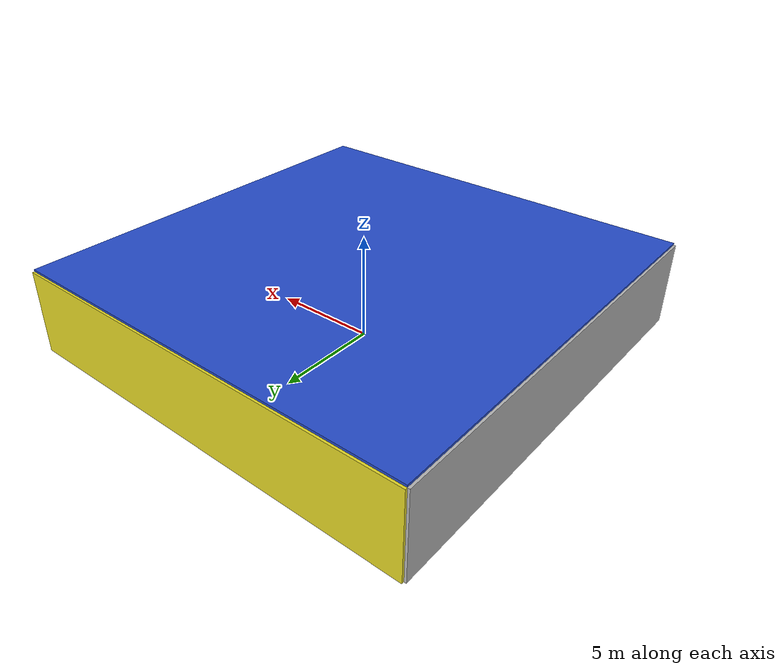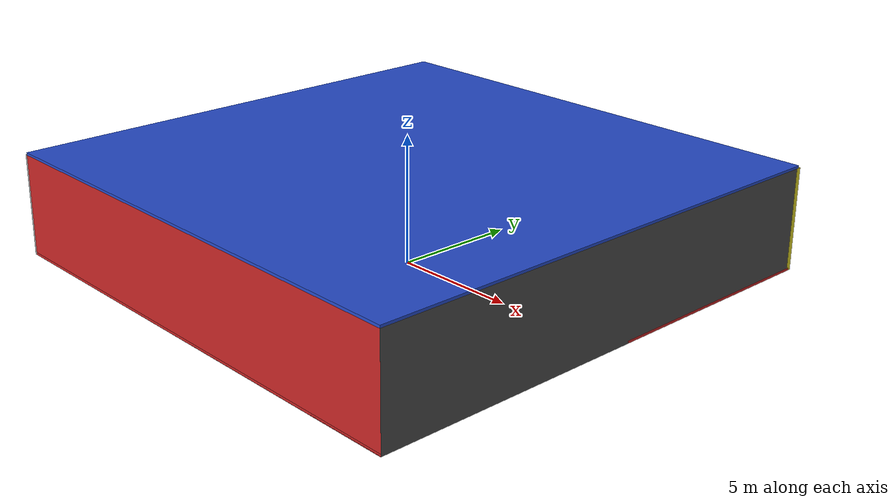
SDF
<sdf version="1.4">
 <world name="default">
  <physics type="ode">
   <max_step_size>0.001</max_step_size>
   <real_time_factor>1</real_time_factor>
   <real_time_update_rate>1000</real_time_update_rate>
   <gravity>0 0 -9.8</gravity>
  </physics>
  <scene><ambient>0.4 0.4 0.4 1</ambient><background>0.7 0.7 0.7 1</background><shadows>1</shadows></scene>
  <model name="Surrounding">
   <static>1</static>
   <link name="Ceiling">
    <collision name="Ceiling_Collision"><geometry><box><size>20 20 0.1</size></box></geometry></collision>
    <visual name="Ceiling_Visual">
     <geometry><box><size>20 20 0.1</size></box></geometry>
     <material>
      <script><uri>file://media/materials/scripts/gazebo.material</uri><name>Gazebo/Blue</name></script>
     </material>
    </visual>
    <pose>0 0 4.05 0 0 0</pose>
   </link>
   <link name="Wall_South">
    <collision name="Wall_South_Collision">
     <geometry><box><size>20 0 4</size></box></geometry>
     <pose>0 0 2 0 -0 0</pose>
    </collision>
    <visual name="Wall_South_Visual">
     <pose>0 0 2 0 -0 0</pose>
     <geometry><box><size>20 0 4</size></box></geometry>
     <material>
      <script><uri>file://media/materials/scripts/gazebo.material</uri><name>Gazebo/RedBright</name></script>
     </material>
    </visual>
    <velocity_decay><linear>0</linear><angular>0</angular></velocity_decay>
    <pose>0 -10 0 0 -0 0</pose>
   </link>
   <link name="Wall_East">
    <collision name="Wall_21_Collision">
     <geometry><box><size>20 0 4</size></box></geometry>
     <pose>0 0 2 0 -0 0</pose>
    </collision>
    <visual name="Wall_21_Visual">
     <pose>0 0 2 0 -0 0</pose>
     <geometry><box><size>20 0 4</size></box></geometry>
     <material>
      <script><uri>file://media/materials/scripts/gazebo.material</uri><name>Gazebo/Road</name></script>
     </material>
    </visual>
    <velocity_decay><linear>0</linear><angular>0</angular></velocity_decay>
    <pose>10 0 0 0 -0 1.5708</pose>
   </link>
   <link name="Wall_North">
    <collision name="Wall_22_Collision">
     <geometry><box><size>20 0.2 4</size></box></geometry>
     <pose>0 0 2 0 -0 0</pose>
    </collision>
    <visual name="Wall_22_Visual">
     <pose>0 0 2 0 -0 0</pose>
     <geometry><box><size>20 0.2 4</size></box></geometry>
     <material>
      <script><uri>file://media/materials/scripts/gazebo.material</uri><name>Gazebo/Yellow</name></script>
     </material>
    </visual>
    <velocity_decay><linear>0</linear><angular>0</angular></velocity_decay>
    <pose>0 10 0 0 -0 0</pose>
   </link>
   <link name="Wall_West">
    <collision name="Wall_23_Collision">
     <geometry><box><size>20 0.2 4</size></box></geometry>
     <pose>0 0 2 0 -0 0</pose>
    </collision>
    <visual name="Wall_23_Visual">
     <pose>0 0 2 0 -0 0</pose>
     <geometry><box><size>20 0.2 4</size></box></geometry>
     <material>
      <script><uri>file://media/materials/scripts/gazebo.material</uri><name>Gazebo/LightOn</name></script>
     </material>
    </visual>
    <velocity_decay><linear>0</linear><angular>0</angular></velocity_decay>
    <pose>-10 0 0 0 0 -1.5708</pose>
   </link>
   <link name="Ground_link">
    <collision name="collision">
     <pose>0 0 .05 0 -0 0</pose>
     <geometry><box><size>20 20 0.1</size></box></geometry>
    </collision>
    <visual name="visual">
     <pose>0 0 .05 0 -0 0</pose>
     <geometry><box><size>20 20 0.1</size></box></geometry>
     <material>
      <script><uri>file://media/materials/scripts/gazebo.material</uri><name>Gazebo/RedGlow</name></script>
     </material>
    </visual>
   </link>
   <static>1</static>
  </model>
  <spherical_coordinates>
   <surface_model>EARTH_WGS84</surface_model>
   <latitude_deg>0</latitude_deg>
   <longitude_deg>0</longitude_deg>
   <elevation>0</elevation>
   <heading_deg>0</heading_deg>
  </spherical_coordinates>
  <light name="lightball_0" type="diffuse">
   <diffuse>0.8 0.8 0.8 1</diffuse>
   <specular>0.2 0.2 0.2 1</specular>
   <attenuation>
    <range>100</range>
    <constant>0.7</constant>
    <linear>0.01</linear>
    <quadratic>0.001</quadratic>
   </attenuation>
   <direction>-0.5 0.1 -0.9</direction>
   <pose>4.50071383962 1.34742266961 1.81876980936 0 0 0</pose>
  </light>
  <light name="lightball_1" type="diffuse">
   <diffuse>0.8 0.8 0.8 1</diffuse>
   <specular>0.2 0.2 0.2 1</specular>
   <attenuation>
    <range>100</range>
    <constant>0.7</constant>
    <linear>0.01</linear>
    <quadratic>0.001</quadratic>
   </attenuation>
   <direction>-0.5 0.1 -0.9</direction>
   <pose>-5.28499184182 -2.05238496809 3.48724421059 0 0 0</pose>
  </light>
  <light name="lightball_2" type="diffuse">
   <diffuse>0.8 0.8 0.8 1</diffuse>
   <specular>0.2 0.2 0.2 1</specular>
   <attenuation>
    <range>100</range>
    <constant>0.7</constant>
    <linear>0.01</linear>
    <quadratic>0.001</quadratic>
   </attenuation>
   <direction>-0.5 0.1 -0.9</direction>
   <pose>-9.36485704496 7.05520294898 3.75965401888 0 0 0</pose>
  </light>
  <light name="lightball_3" type="diffuse">
   <diffuse>0.8 0.8 0.8 1</diffuse>
   <specular>0.2 0.2 0.2 1</specular>
   <attenuation>
    <range>100</range>
    <constant>0.7</constant>
    <linear>0.01</linear>
    <quadratic>0.001</quadratic>
   </attenuation>
   <direction>-0.5 0.1 -0.9</direction>
   <pose>8.67057157174 2.22864712515 2.98288399079 0 0 0</pose>
  </light>
  <light name="lightball_4" type="diffuse">
   <diffuse>0.8 0.8 0.8 1</diffuse>
   <specular>0.2 0.2 0.2 1</specular>
   <attenuation>
    <range>100</range>
    <constant>0.7</constant>
    <linear>0.01</linear>
    <quadratic>0.001</quadratic>
   </attenuation>
   <direction>-0.5 0.1 -0.9</direction>
   <pose>5.14723797677 4.62989775679 2.95560765693 0 0 0</pose>
  </light>
  <light name="lightball_5" type="diffuse">
   <diffuse>0.8 0.8 0.8 1</diffuse>
   <specular>0.2 0.2 0.2 1</specular>
   <attenuation>
    <range>100</range>
    <constant>0.7</constant>
    <linear>0.01</linear>
    <quadratic>0.001</quadratic>
   </attenuation>
   <direction>-0.5 0.1 -0.9</direction>
   <pose>-0.810720461931 -4.52818093588 3.45220643904 0 0 0</pose>
  </light>
  <light name="lightball_6" type="diffuse">
   <diffuse>0.8 0.8 0.8 1</diffuse>
   <specular>0.2 0.2 0.2 1</specular>
   <attenuation>
    <range>100</range>
    <constant>0.7</constant>
    <linear>0.01</linear>
    <quadratic>0.001</quadratic>
   </attenuation>
   <direction>-0.5 0.1 -0.9</direction>
   <pose>9.9786798191 -1.74199709692 0.894299896429 0 0 0</pose>
  </light>
  <light name="lightball_7" type="diffuse">
   <diffuse>0.8 0.8 0.8 1</diffuse>
   <specular>0.2 0.2 0.2 1</specular>
   <attenuation>
    <range>100</range>
    <constant>0.7</constant>
    <linear>0.01</linear>
    <quadratic>0.001</quadratic>
   </attenuation>
   <direction>-0.5 0.1 -0.9</direction>
   <pose>-3.22782681341 8.13549695015 1.10406516052 0 0 0</pose>
  </light>
  <light name="lightball_8" type="diffuse">
   <diffuse>0.8 0.8 0.8 1</diffuse>
   <specular>0.2 0.2 0.2 1</specular>
   <attenuation>
    <range>100</range>
    <constant>0.7</constant>
    <linear>0.01</linear>
    <quadratic>0.001</quadratic>
   </attenuation>
   <direction>-0.5 0.1 -0.9</direction>
   <pose>-3.91729283026 2.42851105191 0.985121730716 0 0 0</pose>
  </light>
  <light name="lightball_9" type="diffuse">
   <diffuse>0.8 0.8 0.8 1</diffuse>
   <specular>0.2 0.2 0.2 1</specular>
   <attenuation>
    <range>100</range>
    <constant>0.7</constant>
    <linear>0.01</linear>
    <quadratic>0.001</quadratic>
   </attenuation>
   <direction>-0.5 0.1 -0.9</direction>
   <pose>9.95703088427 -7.89183366751 2.49753615972 0 0 0</pose>
  </light>
  <include>
   <uri>model://textured_shapes</uri>
   <pose>-4.06524150551 -4.54525004643 0 0 0 2.94436605985</pose>
  </include>
  <include><uri>model://cabinet</uri><pose>-4.46677768205 -1.3498635341 0 0 0 0.853051524942</pose></include>
  <include>
   <uri>model://textured_shapes</uri>
   <pose>-4.05706980015 6.94290211534 0 0 0 1.04383949269</pose>
  </include>
  <include>
   <uri>model://construction_cone</uri>
   <pose>-1.29988828059 1.11727449779 0 0 0 0.894194700048</pose>
  </include>
  <include>
   <uri>model://robocup_3Dsim_goal</uri>
   <pose>1.48445419043 8.19805727107 0 0 0 1.5894728423</pose>
  </include>
  <include>
   <uri>model://robocup_3Dsim_goal</uri>
   <pose>5.02331973226 0.99393244788 0 0 0 0.263539805304</pose>
  </include>
  <include><uri>model://table</uri><pose>7.16707147641 -4.64152512176 0 0 0 0.963568521878</pose></include>
  <include><uri>model://cabinet</uri><pose>7.50525648878 2.06426356611 0 0 0 1.07590171222</pose></include>
 </world>
</sdf>

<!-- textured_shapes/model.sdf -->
<sdf version="1.6">
  <model name="textured_shapes">
    <pose>0 0 0.5 0 0 0</pose>
    <link name="box">
      <pose>0 -1.5 0 0 0 0</pose>
      <collision name="collision">
        <geometry>
          <box>
            <size>1 1 1</size>
          </box>
        </geometry>
      </collision>
      <visual name="visual">
        <geometry>
          <box>
            <size>1 1 1</size>
          </box>
        </geometry>
        <material>
          <script>
            <uri>model://../model_source/models/textured_shapes/materials/scripts</uri>
            <uri>model://../model_source/models/textured_shapes/materials/textures</uri>
            <name>TexturedShape/Squares</name>
          </script>
        </material>
      </visual>
    </link>
    <link name="sphere">
      <collision name="collision">
        <geometry>
          <sphere>
            <radius>0.5</radius>
          </sphere>
        </geometry>
      </collision>
      <visual name="visual">
        <geometry>
          <sphere>
            <radius>0.5</radius>
          </sphere>
        </geometry>
        <material>
          <script>
            <uri>model://../model_source/models/textured_shapes/materials/scripts</uri>
            <uri>model://../model_source/models/textured_shapes/materials/textures</uri>
            <name>TexturedShape/Squares</name>
          </script>
        </material>
      </visual>
    </link>
    <link name="cylinder">
      <pose>0 1.5 0 0 0 0</pose>
      <collision name="collision">
        <geometry>
          <cylinder>
            <radius>0.5</radius>
            <length>1</length>
          </cylinder>
        </geometry>
      </collision>
      <visual name="visual">
        <geometry>
          <cylinder>
            <radius>0.5</radius>
            <length>1</length>
          </cylinder>
        </geometry>
        <material>
          <script>
            <uri>model://../model_source/models/textured_shapes/materials/scripts</uri>
            <uri>model://../model_source/models/textured_shapes/materials/textures</uri>
            <name>TexturedShape/Squares</name>
          </script>
        </material>
      </visual>
    </link>
  </model>
</sdf>

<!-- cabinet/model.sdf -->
<sdf version="1.5">
  <model name="cabinet">
    <static>true</static>
    <link name="cabinet_bottom_plate">
      <inertial>
        <pose>0 0 -1 0 0 0</pose>
        <inertia>
          <ixx>2.050000</ixx>
          <ixy>0</ixy>
          <ixz>0</ixz>
          <iyy>2.050000</iyy>
          <iyz>0</iyz>
          <izz>2.050000</izz>
        </inertia>
        <mass>25.000000</mass>
      </inertial>
      <collision name="cabinet_bottom_plate_geom">
        <pose>0 0 0.010000 0 0 0</pose>
        <geometry>
          <box>
            <size>0.450000 0.450000 0.020000</size>
          </box>
        </geometry>
      </collision>
      <visual name="cabinet_bottom_plate_geom_visual">
        <pose>0 0 0.010000 0 0 0</pose>
        <geometry>
          <box>
            <size>0.450000 0.450000 0.020000</size>
          </box>
        </geometry>
        <material>
          <script>
            <uri>model://media/materials/scripts/gazebo.material</uri>
            <name>Gazebo/Wood</name>
          </script>
        </material>
      </visual>
      <collision name="cabinet_bottom_plate_geom_cabinet_back_plate">
        <pose>0.235000 0 0.510000 0 0 0</pose>
        <geometry>
          <box>
            <size>0.020000 0.450000 1.020000</size>
          </box>
        </geometry>
      </collision>
      <visual name="cabinet_bottom_plate_geom_cabinet_back_plate_visual">
        <pose>0.235000 0 0.510000 0 0 0</pose>
        <geometry>
          <box>
            <size>0.020000 0.450000 1.020000</size>
          </box>
        </geometry>
        <material>
          <script>
            <uri>model://media/materials/scripts/gazebo.material</uri>
            <name>Gazebo/Wood</name>
          </script>
        </material>
      </visual>
      <collision name="cabinet_bottom_plate_geom_cabinet_left_plate">
        <pose>0 0.235000 0.510000 0 0 0</pose>
        <geometry>
          <box>
            <size>0.450000 0.020000 1.020000</size>
          </box>
        </geometry>
      </collision>
      <visual name="cabinet_bottom_plate_geom_cabinet_left_plate_visual">
        <pose>0 0.235000 0.510000 0 0 0</pose>
        <geometry>
          <box>
            <size>0.450000 0.020000 1.020000</size>
          </box>
        </geometry>
        <material>
          <script>
            <uri>model://media/materials/scripts/gazebo.material</uri>
            <name>Gazebo/Wood</name>
          </script>
        </material>
      </visual>
      <collision name="cabinet_bottom_plate_geom_cabinet_middle_plate">
        <pose>0 0 0.510000 0 0 0</pose>
        <geometry>
          <box>
            <size>0.450000 0.450000 0.020000</size>
          </box>
        </geometry>
      </collision>
      <visual name="cabinet_bottom_plate_geom_cabinet_middle_plate_visual">
        <pose>0 0 0.510000 0 0 0</pose>
        <geometry>
          <box>
            <size>0.450000 0.450000 0.020000</size>
          </box>
        </geometry>
        <material>
          <script>
            <uri>model://media/materials/scripts/gazebo.material</uri>
            <name>Gazebo/Wood</name>
          </script>
        </material>
      </visual>
      <collision name="cabinet_bottom_plate_geom_cabinet_right_plate">
        <pose>0 -0.235000 0.510000 0 0 0</pose>
        <geometry>
          <box>
            <size>0.450000 0.020000 1.020000</size>
          </box>
        </geometry>
      </collision>
      <visual name="cabinet_bottom_plate_geom_cabinet_right_plate_visual">
        <pose>0 -0.235000 0.510000 0 0 0</pose>
        <geometry>
          <box>
            <size>0.450000 0.020000 1.020000</size>
          </box>
        </geometry>
        <material>
          <script>
            <uri>model://media/materials/scripts/gazebo.material</uri>
            <name>Gazebo/Wood</name>
          </script>
        </material>
      </visual>
      <collision name="cabinet_bottom_plate_geom_cabinet_top_plate">
        <pose>0 0 1.010000 0 0 0</pose>
        <geometry>
          <box>
            <size>0.450000 0.450000 0.020000</size>
          </box>
        </geometry>
      </collision>
      <visual name="cabinet_bottom_plate_geom_cabinet_top_plate_visual">
        <pose>0 0 1.010000 0 0 0</pose>
        <geometry>
          <box>
            <size>0.450000 0.450000 0.020000</size>
          </box>
        </geometry>
        <material>
          <script>
            <uri>model://media/materials/scripts/gazebo.material</uri>
            <name>Gazebo/Wood</name>
          </script>
        </material>
      </visual>
    </link>
  </model>
</sdf>

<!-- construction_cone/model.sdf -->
<sdf version="1.5">
  <model name="Construction Cone">
    <link name="link">
      <collision name="collision">
        <geometry>
          <mesh>
            <scale>10 10 10</scale>
            <uri>file://isr-testbed/construction_cone/meshes/construction_cone.dae</uri>
          </mesh>
        </geometry>
      </collision>
      <visual name="visual">
        <geometry>
          <mesh>
            <scale>10 10 10</scale>
            <uri>file://isr-testbed/construction_cone/meshes/construction_cone.dae</uri>
          </mesh>
        </geometry>
      </visual>
    </link>
  </model>
</sdf>

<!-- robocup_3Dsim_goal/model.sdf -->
<sdf version="1.5">
  <model name="robocup_3d_goal">
    <static>true</static>
    <link name="left_post">
      <pose>0 1.05 0.45 0 0 0</pose>
      <collision name="collision">
        <geometry>
          <cylinder>
            <radius>0.05</radius>
            <length>0.9</length>
          </cylinder>
        </geometry>
      </collision>
      <visual name="visual">
        <geometry>
          <cylinder>
            <radius>0.05</radius>
            <length>0.9</length>
          </cylinder>
        </geometry>
        <material>
          <script>
            <uri>file://media/materials/scripts/gazebo.material</uri>
            <name>Gazebo/ZincYellow</name>
          </script>
        </material>
      </visual>
    </link>
    <link name="left_support_horiz_lower">
      <pose>0.30 1.05 0.01 0 0 0</pose>
      <collision name="collision">
        <geometry>
          <box>
            <size>0.50 0.02 0.02</size>
          </box>
        </geometry>
      </collision>
      <visual name="visual">
        <geometry>
          <box>
            <size>0.50 0.02 0.02</size>
          </box>
        </geometry>
        <material>
          <script>
            <uri>file://media/materials/scripts/gazebo.material</uri>
            <name>Gazebo/White</name>
          </script>
        </material>
      </visual>
    </link>
    <link name="left_support_horiz_upper">
      <pose>0.30 1.05 0.79 0 0 0</pose>
      <collision name="collision">
        <geometry>
          <box>
            <size>0.50 0.02 0.02</size>
          </box>
        </geometry>
      </collision>
      <visual name="visual">
        <geometry>
          <box>
            <size>0.50 0.02 0.02</size>
          </box>
        </geometry>
        <material>
          <script>
            <uri>file://media/materials/scripts/gazebo.material</uri>
            <name>Gazebo/White</name>
          </script>
        </material>
      </visual>
    </link>
    <link name="left_support_vertical">
      <pose>0.56 1.05 0.4 0 1.5708 0</pose>
      <collision name="collision">
        <geometry>
          <box>
            <size>0.80 0.02 0.02</size>
          </box>
        </geometry>
      </collision>
      <visual name="visual">
        <geometry>
          <box>
            <size>0.80 0.02 0.02</size>
          </box>
        </geometry>
        <material>
          <script>
            <uri>file://media/materials/scripts/gazebo.material</uri>
            <name>Gazebo/White</name>
          </script>
        </material>
      </visual>
    </link>
    <link name="right_support_horiz_lower">
      <pose>0.30 -1.05 0.01 0 0 0</pose>
      <collision name="collision">
        <geometry>
          <box>
            <size>0.50 0.02 0.02</size>
          </box>
        </geometry>
      </collision>
      <visual name="visual">
        <geometry>
          <box>
            <size>0.50 0.02 0.02</size>
          </box>
        </geometry>
        <material>
          <script>
            <uri>file://media/materials/scripts/gazebo.material</uri>
            <name>Gazebo/White</name>
          </script>
        </material>
      </visual>
    </link>
    <link name="right_support_horiz_upper">
      <pose>0.30 -1.05 0.79 0 0 0</pose>
      <collision name="collision">
        <geometry>
          <box>
            <size>0.50 0.02 0.02</size>
          </box>
        </geometry>
      </collision>
      <visual name="visual">
        <geometry>
          <box>
            <size>0.50 0.02 0.02</size>
          </box>
        </geometry>
        <material>
          <script>
            <uri>file://media/materials/scripts/gazebo.material</uri>
            <name>Gazebo/White</name>
          </script>
        </material>
      </visual>
    </link>
    <link name="right_support_vertical">
      <pose>0.56 -1.05 0.4 0 1.5708 0</pose>
      <collision name="collision">
        <geometry>
          <box>
            <size>0.80 0.02 0.02</size>
          </box>
        </geometry>
      </collision>
      <visual name="visual">
        <geometry>
          <box>
            <size>0.80 0.02 0.02</size>
          </box>
        </geometry>
        <material>
          <script>
            <uri>file://media/materials/scripts/gazebo.material</uri>
            <name>Gazebo/White</name>
          </script>
        </material>
      </visual>
    </link>
    <link name="center_support_horiz_lower">
      <pose>0.56 0 0.01 0 1.5708 0</pose>
      <collision name="collision">
        <geometry>
          <box>
            <size>0.02 2.08 0.02</size>
          </box>
        </geometry>
      </collision>
      <visual name="visual">
        <geometry>
          <box>
            <size>0.02 2.08 0.02</size>
          </box>
        </geometry>
        <material>
          <script>
            <uri>file://media/materials/scripts/gazebo.material</uri>
            <name>Gazebo/White</name>
          </script>
        </material>
      </visual>
    </link>
    <link name="center_support_horiz_upper">
      <pose>0.56 0 0.79 0 1.5708 0</pose>
      <collision name="collision">
        <geometry>
          <box>
            <size>0.02 2.08 0.02</size>
          </box>
        </geometry>
      </collision>
      <visual name="visual">
        <geometry>
          <box>
            <size>0.02 2.08 0.02</size>
          </box>
        </geometry>
        <material>
          <script>
            <uri>file://media/materials/scripts/gazebo.material</uri>
            <name>Gazebo/White</name>
          </script>
        </material>
      </visual>
    </link>
    <link name="right_post">
      <pose>0 -1.05 0.45 0 0 0</pose>
      <collision name="collision">
        <geometry>
          <cylinder>
            <radius>0.05</radius>
            <length>0.9</length>
          </cylinder>
        </geometry>
      </collision>
      <visual name="visual">
        <geometry>
          <cylinder>
            <radius>0.05</radius>
            <length>0.9</length>
          </cylinder>
        </geometry>
        <material>
          <script>
            <uri>file://media/materials/scripts/gazebo.material</uri>
            <name>Gazebo/ZincYellow</name>
          </script>
        </material>
      </visual>
    </link>
    <link name="crossbar">
      <pose>0 0 0.85 1.57 1.57 0</pose>
      <collision name="collision">
        <geometry>
          <cylinder>
            <radius>0.05</radius>
            <length>2.0</length>
          </cylinder>
        </geometry>
      </collision>
      <visual name="visual">
        <geometry>
          <cylinder>
            <radius>0.05</radius>
            <length>2.0</length>
          </cylinder>
        </geometry>
        <material>
          <script>
            <uri>file://media/materials/scripts/gazebo.material</uri>
            <name>Gazebo/ZincYellow</name>
          </script>
        </material>
      </visual>
    </link>
    <link name="center_net">
      <pose>0.56 0 0.40 0 0 0</pose>
      <collision name="collision">
        <geometry>
          <box>
            <size>0.01 2.1 0.80</size>
          </box>
        </geometry>
      </collision>
      <visual name="visual">
        <geometry>
          <box>
            <size>0.01 2.1 0.80</size>
          </box>
        </geometry>
        <material>
          <script>
            <uri>model://../model_source/models/robocup09_spl_field/materials/scripts/</uri>
            <uri>model://../model_source/models/robocup09_spl_field/materials/textures/</uri>
            <name>RoboCup/Net</name>
          </script>
        </material>
      </visual>
    </link>
    <link name="left_net">
      <pose>0.30 1.05 0.40 0 0 0</pose>
      <collision name="collision">
        <geometry>
          <box>
            <size>0.50 0.01 0.76</size>
          </box>
        </geometry>
      </collision>
      <visual name="visual">
        <geometry>
          <box>
            <size>0.50 0.01 0.76</size>
          </box>
        </geometry>
        <material>
          <script>
            <uri>model://../model_source/models/robocup09_spl_field/materials/scripts/</uri>
            <uri>model://../model_source/models/robocup09_spl_field/materials/textures/</uri>
            <name>RoboCup/Net</name>
          </script>
        </material>
      </visual>
    </link>
    <link name="right_net">
      <pose>0.30 -1.05 0.40 0 0 0</pose>
      <collision name="collision">
        <geometry>
          <box>
            <size>0.50 0.01 0.76</size>
          </box>
        </geometry>
      </collision>
      <visual name="visual">
        <geometry>
          <box>
            <size>0.50 0.01 0.76</size>
          </box>
        </geometry>
        <material>
          <script>
            <uri>model://../model_source/models/robocup09_spl_field/materials/scripts/</uri>
            <uri>model://../model_source/models/robocup09_spl_field/materials/textures/</uri>
            <name>RoboCup/Net</name>
          </script>
        </material>
      </visual>
    </link>
  </model>
</sdf>

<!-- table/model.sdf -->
<sdf version="1.5">
  <model name="table">
    <static>true</static>
    <link name="link">
      <collision name="surface">
        <pose>0 0 1.0 0 0 0</pose>
        <geometry>
          <box>
            <size>1.5 0.8 0.03</size>
          </box>
        </geometry>
        <surface>
          <friction>
            <ode>
              <mu>0.6</mu>
              <mu2>0.6</mu2>
            </ode>
          </friction>
        </surface>
      </collision>
      <visual name="visual1">
        <pose>0 0 1.0 0 0 0</pose>
        <geometry>
          <box>
            <size>1.5 0.8 0.03</size>
          </box>
        </geometry>
        <material>
          <script>
            <uri>model://media/materials/scripts/gazebo.material</uri>
            <name>Gazebo/Wood</name>
          </script>
        </material>
      </visual>
      <collision name="front_left_leg">
        <pose>0.68 0.38 0.5 0 0 0</pose>
        <geometry>
          <cylinder>
            <radius>0.02</radius>
            <length>1.0</length>
          </cylinder>
        </geometry>
      </collision>
      <visual name="front_left_leg">
        <pose>0.68 0.38 0.5 0 0 0</pose>
        <geometry>
          <cylinder>
            <radius>0.02</radius>
            <length>1.0</length>
          </cylinder>
        </geometry>
        <material>
          <script>
            <uri>model://media/materials/scripts/gazebo.material</uri>
            <name>Gazebo/Grey</name>
          </script>
        </material>
      </visual>
      <collision name="front_right_leg">
        <pose>0.68 -0.38 0.5 0 0 0</pose>
        <geometry>
          <cylinder>
            <radius>0.02</radius>
            <length>1.0</length>
          </cylinder>
        </geometry>
      </collision>
      <visual name="front_right_leg">
        <pose>0.68 -0.38 0.5 0 0 0</pose>
        <geometry>
          <cylinder>
            <radius>0.02</radius>
            <length>1.0</length>
          </cylinder>
        </geometry>
        <material>
          <script>
            <uri>model://media/materials/scripts/gazebo.material</uri>
            <name>Gazebo/Grey</name>
          </script>
        </material>
      </visual>
      <collision name="back_right_leg">
        <pose>-0.68 -0.38 0.5 0 0 0</pose>
        <geometry>
          <cylinder>
            <radius>0.02</radius>
            <length>1.0</length>
          </cylinder>
        </geometry>
      </collision>
      <visual name="back_right_leg">
        <pose>-0.68 -0.38 0.5 0 0 0</pose>
        <geometry>
          <cylinder>
            <radius>0.02</radius>
            <length>1.0</length>
          </cylinder>
        </geometry>
        <material>
          <script>
            <uri>model://media/materials/scripts/gazebo.material</uri>
            <name>Gazebo/Grey</name>
          </script>
        </material>
      </visual>
      <collision name="back_left_leg">
        <pose>-0.68 0.38 0.5 0 0 0</pose>
        <geometry>
          <cylinder>
            <radius>0.02</radius>
            <length>1.0</length>
          </cylinder>
        </geometry>
      </collision>
      <visual name="back_left_leg">
        <pose>-0.68 0.38 0.5 0 0 0</pose>
        <geometry>
          <cylinder>
            <radius>0.02</radius>
            <length>1.0</length>
          </cylinder>
        </geometry>
        <material>
          <script>
            <uri>model://media/materials/scripts/gazebo.material</uri>
            <name>Gazebo/Grey</name>
          </script>
        </material>
      </visual>
    </link>
  </model>
</sdf>
